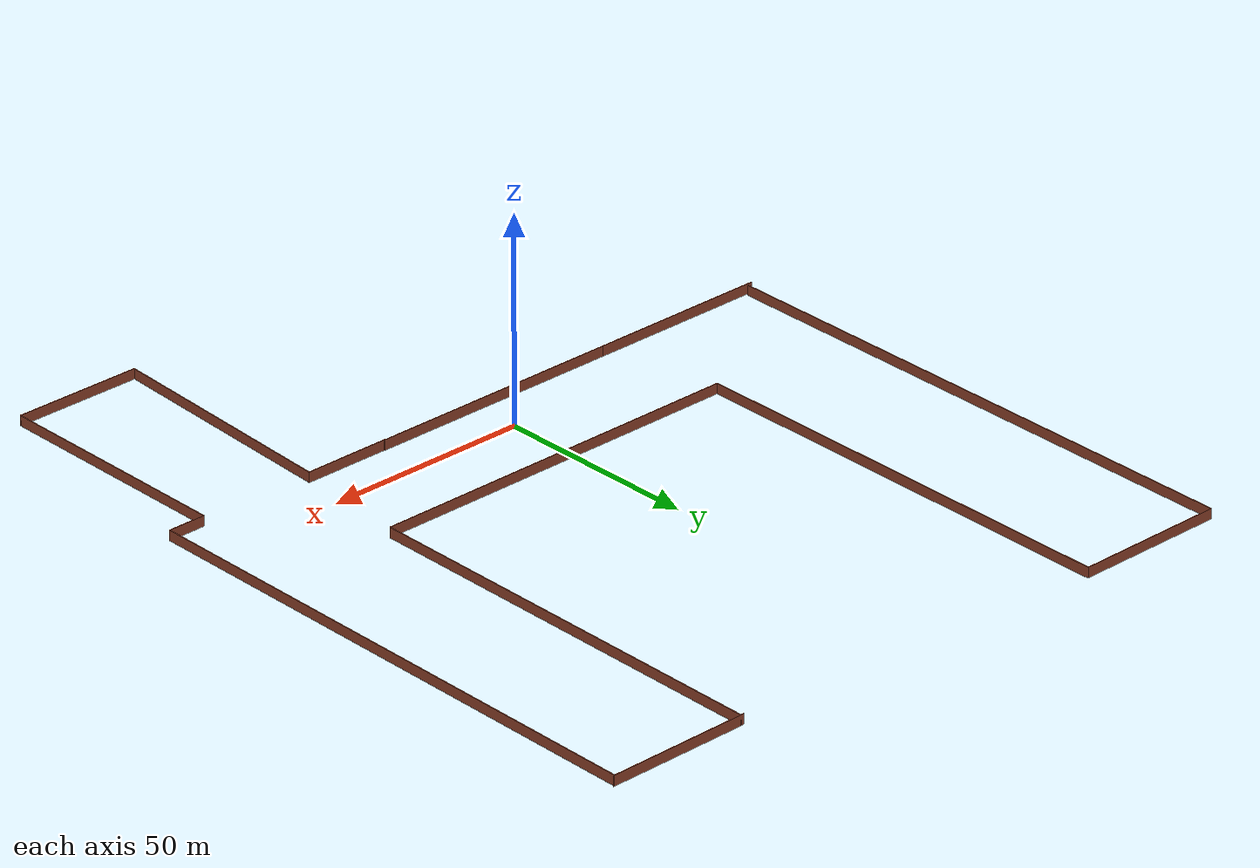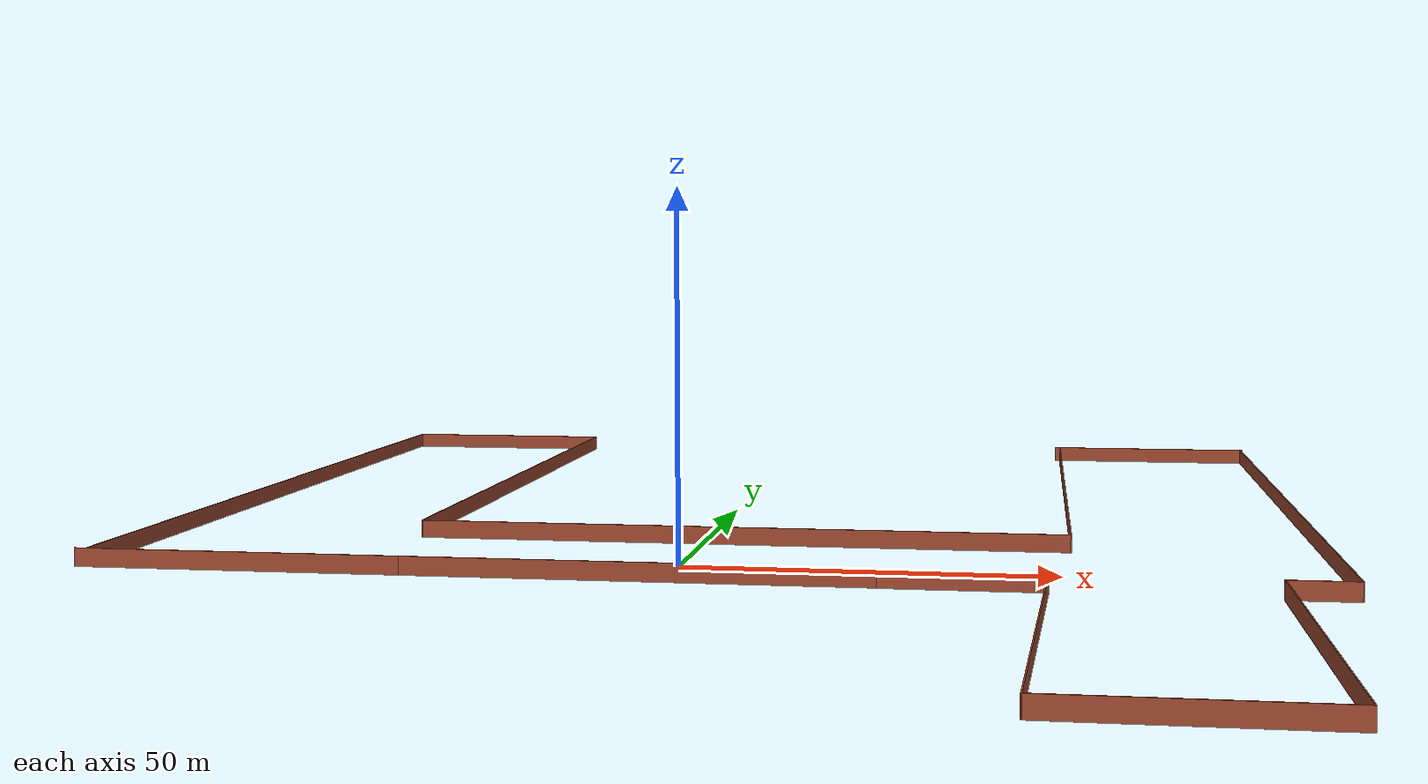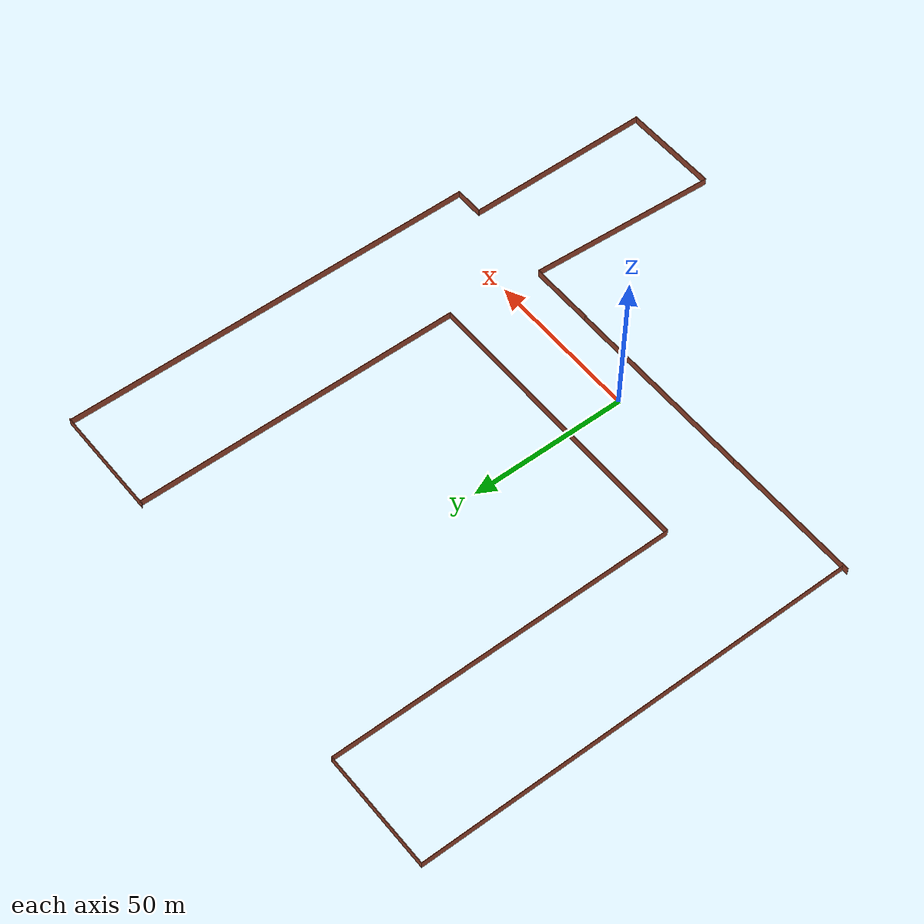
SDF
<?xml version='1.0'?>
<sdf version='1.7'>
  <model name='canal1'>
    <pose>8.0964 28.2404 0 0 -0 0</pose>
    <link name='Wall_0'>
      <collision name='Wall_0_Collision'>
        <geometry>
          <box>
            <size>62.25 0.15 2.5</size>
          </box>
        </geometry>
        <pose>0 0 1.25 0 -0 0</pose>
      </collision>
      <visual name='Wall_0_Visual'>
        <pose>0 0 1.25 0 -0 0</pose>
        <geometry>
          <box>
            <size>62.25 0.15 2.5</size>
          </box>
        </geometry>
        <material>
          <script>
            <uri>file://media/materials/scripts/gazebo.material</uri>
            <name>Gazebo/Bricks</name>
          </script>
          <ambient>1 1 1 1</ambient>
        </material>
        <meta>
          <layer>0</layer>
        </meta>
      </visual>
      <pose>-11.7789 -38.8909 0 0 -0 3.14159</pose>
    </link>
    <link name='Wall_1'>
      <collision name='Wall_1_Collision'>
        <geometry>
          <box>
            <size>44.5 0.15 2.5</size>
          </box>
        </geometry>
        <pose>0 0 1.25 0 -0 0</pose>
      </collision>
      <visual name='Wall_1_Visual'>
        <pose>0 0 1.25 0 -0 0</pose>
        <geometry>
          <box>
            <size>44.5 0.15 2.5</size>
          </box>
        </geometry>
        <material>
          <script>
            <uri>file://media/materials/scripts/gazebo.material</uri>
            <name>Gazebo/Bricks</name>
          </script>
          <ambient>1 1 1 1</ambient>
        </material>
        <meta>
          <layer>0</layer>
        </meta>
      </visual>
      <pose>-65.0039 -38.8909 0 0 -0 3.14159</pose>
    </link>
    <link name='Wall_10'>
      <collision name='Wall_10_Collision'>
        <geometry>
          <box>
            <size>9 0.15 2.5</size>
          </box>
        </geometry>
        <pose>0 0 1.25 0 -0 0</pose>
      </collision>
      <visual name='Wall_10_Visual'>
        <pose>0 0 1.25 0 -0 0</pose>
        <geometry>
          <box>
            <size>9 0.15 2.5</size>
          </box>
        </geometry>
        <material>
          <script>
            <uri>file://media/materials/scripts/gazebo.material</uri>
            <name>Gazebo/Bricks</name>
          </script>
          <ambient>1 1 1 1</ambient>
        </material>
        <meta>
          <layer>0</layer>
        </meta>
      </visual>
      <pose>72.6289 -39.6232 0 0 -0 3.14159</pose>
    </link>
    <link name='Wall_11'>
      <collision name='Wall_11_Collision'>
        <geometry>
          <box>
            <size>59.75 0.15 2.5</size>
          </box>
        </geometry>
        <pose>0 0 1.25 0 -0 0</pose>
      </collision>
      <visual name='Wall_11_Visual'>
        <pose>0 0 1.25 0 -0 0</pose>
        <geometry>
          <box>
            <size>59.75 0.15 2.5</size>
          </box>
        </geometry>
        <material>
          <script>
            <uri>file://media/materials/scripts/gazebo.material</uri>
            <name>Gazebo/Bricks</name>
          </script>
          <ambient>1 1 1 1</ambient>
        </material>
        <meta>
          <layer>0</layer>
        </meta>
      </visual>
      <pose>68.0789 -69.4232 0 0 -0 -1.5708</pose>
    </link>
    <link name='Wall_12'>
      <collision name='Wall_12_Collision'>
        <geometry>
          <box>
            <size>31.25 0.15 2.5</size>
          </box>
        </geometry>
        <pose>0 0 1.25 0 -0 0</pose>
      </collision>
      <visual name='Wall_12_Visual'>
        <pose>0 0 1.25 0 -0 0</pose>
        <geometry>
          <box>
            <size>31.25 0.15 2.5</size>
          </box>
        </geometry>
        <material>
          <script>
            <uri>file://media/materials/scripts/gazebo.material</uri>
            <name>Gazebo/Bricks</name>
          </script>
          <ambient>1 1 1 1</ambient>
        </material>
        <meta>
          <layer>0</layer>
        </meta>
      </visual>
      <pose>52.5289 -99.2232 0 0 -0 3.14159</pose>
    </link>
    <link name='Wall_13'>
      <collision name='Wall_13_Collision'>
        <geometry>
          <box>
            <size>60.4431 0.15 2.5</size>
          </box>
        </geometry>
        <pose>0 0 1.25 0 -0 0</pose>
      </collision>
      <visual name='Wall_13_Visual'>
        <pose>0 0 1.25 0 -0 0</pose>
        <geometry>
          <box>
            <size>60.4431 0.15 2.5</size>
          </box>
        </geometry>
        <material>
          <script>
            <uri>file://media/materials/scripts/gazebo.material</uri>
            <name>Gazebo/Bricks</name>
          </script>
          <ambient>1 1 1 1</ambient>
        </material>
        <meta>
          <layer>0</layer>
        </meta>
      </visual>
      <pose>38.4846 -69.1142 0 0 -0 1.52083</pose>
    </link>
    <link name='Wall_14'>
      <collision name='Wall_14_Collision'>
        <geometry>
          <box>
            <size>21.25 0.15 2.5</size>
          </box>
        </geometry>
        <pose>0 0 1.25 0 -0 0</pose>
      </collision>
      <visual name='Wall_14_Visual'>
        <pose>0 0 1.25 0 -0 0</pose>
        <geometry>
          <box>
            <size>21.25 0.15 2.5</size>
          </box>
        </geometry>
        <material>
          <script>
            <uri>file://media/materials/scripts/gazebo.material</uri>
            <name>Gazebo/Bricks</name>
          </script>
          <ambient>1 1 1 1</ambient>
        </material>
        <meta>
          <layer>0</layer>
        </meta>
      </visual>
      <pose>29.4403 -39.0053 0 0 -0 3.14159</pose>
    </link>
    <link name='Wall_3'>
      <collision name='Wall_3_Collision'>
        <geometry>
          <box>
            <size>137.75 0.15 2.5</size>
          </box>
        </geometry>
        <pose>0 0 1.25 0 -0 0</pose>
      </collision>
      <visual name='Wall_3_Visual'>
        <pose>0 0 1.25 0 -0 0</pose>
        <geometry>
          <box>
            <size>137.75 0.15 2.5</size>
          </box>
        </geometry>
        <material>
          <script>
            <uri>file://media/materials/scripts/gazebo.material</uri>
            <name>Gazebo/Bricks</name>
          </script>
          <ambient>1 1 1 1</ambient>
        </material>
        <meta>
          <layer>0</layer>
        </meta>
      </visual>
      <pose>-85.6211 30.4268 0 0 -0 1.5708</pose>
    </link>
    <link name='Wall_4'>
      <collision name='Wall_4_Collision'>
        <geometry>
          <box>
            <size>36.5 0.15 2.5</size>
          </box>
        </geometry>
        <pose>0 0 1.25 0 -0 0</pose>
      </collision>
      <visual name='Wall_4_Visual'>
        <pose>0 0 1.25 0 -0 0</pose>
        <geometry>
          <box>
            <size>36.5 0.15 2.5</size>
          </box>
        </geometry>
        <material>
          <script>
            <uri>file://media/materials/scripts/gazebo.material</uri>
            <name>Gazebo/Bricks</name>
          </script>
          <ambient>1 1 1 1</ambient>
        </material>
        <meta>
          <layer>0</layer>
        </meta>
      </visual>
      <pose>-67.4461 99.2268 0 0 -0 0</pose>
    </link>
    <link name='Wall_5'>
      <collision name='Wall_5_Collision'>
        <geometry>
          <box>
            <size>109.25 0.15 2.5</size>
          </box>
        </geometry>
        <pose>0 0 1.25 0 -0 0</pose>
      </collision>
      <visual name='Wall_5_Visual'>
        <pose>0 0 1.25 0 -0 0</pose>
        <geometry>
          <box>
            <size>109.25 0.15 2.5</size>
          </box>
        </geometry>
        <material>
          <script>
            <uri>file://media/materials/scripts/gazebo.material</uri>
            <name>Gazebo/Bricks</name>
          </script>
          <ambient>1 1 1 1</ambient>
        </material>
        <meta>
          <layer>0</layer>
        </meta>
      </visual>
      <pose>-49.2711 44.6768 0 0 -0 -1.5708</pose>
    </link>
    <link name='Wall_6'>
      <collision name='Wall_6_Collision'>
        <geometry>
          <box>
            <size>92.75 0.15 2.5</size>
          </box>
        </geometry>
        <pose>0 0 1.25 0 -0 0</pose>
      </collision>
      <visual name='Wall_6_Visual'>
        <pose>0 0 1.25 0 -0 0</pose>
        <geometry>
          <box>
            <size>92.75 0.15 2.5</size>
          </box>
        </geometry>
        <material>
          <script>
            <uri>file://media/materials/scripts/gazebo.material</uri>
            <name>Gazebo/Bricks</name>
          </script>
          <ambient>1 1 1 1</ambient>
        </material>
        <meta>
          <layer>0</layer>
        </meta>
      </visual>
      <pose>-2.97114 -9.87317 0 0 -0 0</pose>
    </link>
    <link name='Wall_7'>
      <collision name='Wall_7_Collision'>
        <geometry>
          <box>
            <size>104 0.15 2.5</size>
          </box>
        </geometry>
        <pose>0 0 1.25 0 -0 0</pose>
      </collision>
      <visual name='Wall_7_Visual'>
        <pose>0 0 1.25 0 -0 0</pose>
        <geometry>
          <box>
            <size>104 0.15 2.5</size>
          </box>
        </geometry>
        <material>
          <script>
            <uri>file://media/materials/scripts/gazebo.material</uri>
            <name>Gazebo/Bricks</name>
          </script>
          <ambient>1 1 1 1</ambient>
        </material>
        <meta>
          <layer>0</layer>
        </meta>
      </visual>
      <pose>43.3289 42.0518 0 0 -0 1.5708</pose>
    </link>
    <link name='Wall_8'>
      <collision name='Wall_8_Collision'>
        <geometry>
          <box>
            <size>35 0.15 2.5</size>
          </box>
        </geometry>
        <pose>0 0 1.25 0 -0 0</pose>
      </collision>
      <visual name='Wall_8_Visual'>
        <pose>0 0 1.25 0 -0 0</pose>
        <geometry>
          <box>
            <size>35 0.15 2.5</size>
          </box>
        </geometry>
        <material>
          <script>
            <uri>file://media/materials/scripts/gazebo.material</uri>
            <name>Gazebo/Bricks</name>
          </script>
          <ambient>1 1 1 1</ambient>
        </material>
        <meta>
          <layer>0</layer>
        </meta>
      </visual>
      <pose>60 93.9768 0 0 -0 0</pose>
    </link>
    <link name='Wall_9'>
      <collision name='Wall_9_Collision'>
        <geometry>
          <box>
            <size>133.75 0.15 2.5</size>
          </box>
        </geometry>
        <pose>0 0 1.25 0 -0 0</pose>
      </collision>
      <visual name='Wall_9_Visual'>
        <pose>0 0 1.25 0 -0 0</pose>
        <geometry>
          <box>
            <size>133.75 0.15 2.5</size>
          </box>
        </geometry>
        <material>
          <script>
            <uri>file://media/materials/scripts/gazebo.material</uri>
            <name>Gazebo/Bricks</name>
          </script>
          <ambient>1 1 1 1</ambient>
        </material>
        <meta>
          <layer>0</layer>
        </meta>
      </visual>
      <pose>77.1789 27.1768 0 0 -0 -1.5708</pose>
    </link>
    <static>1</static>
  </model>
</sdf>
